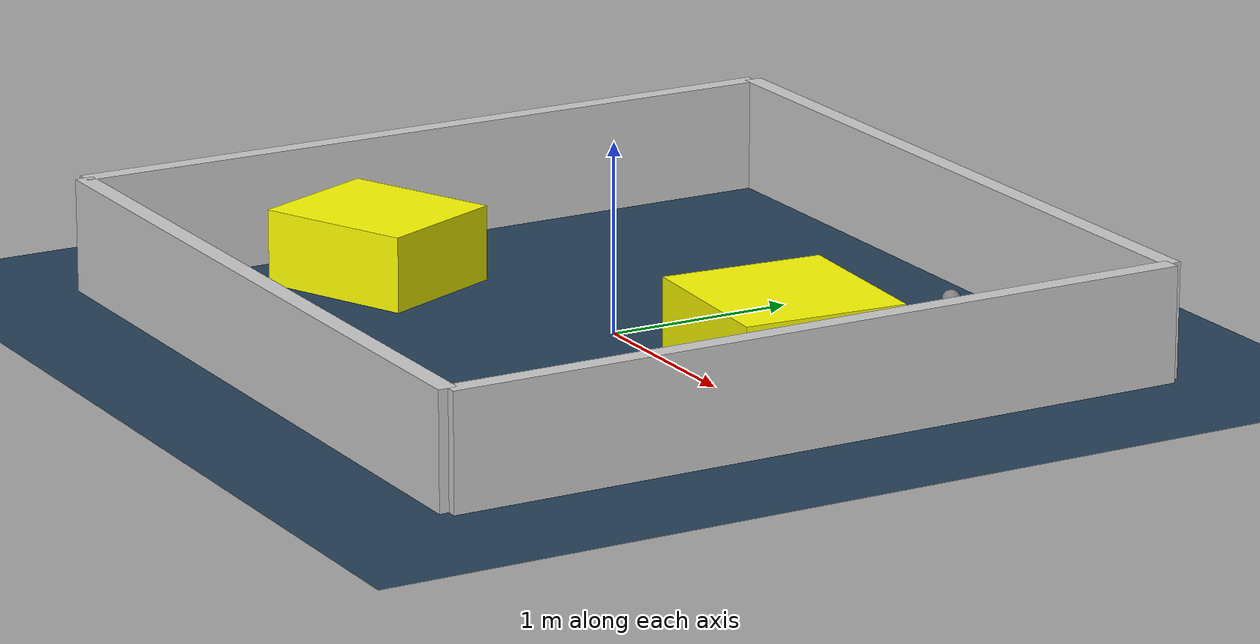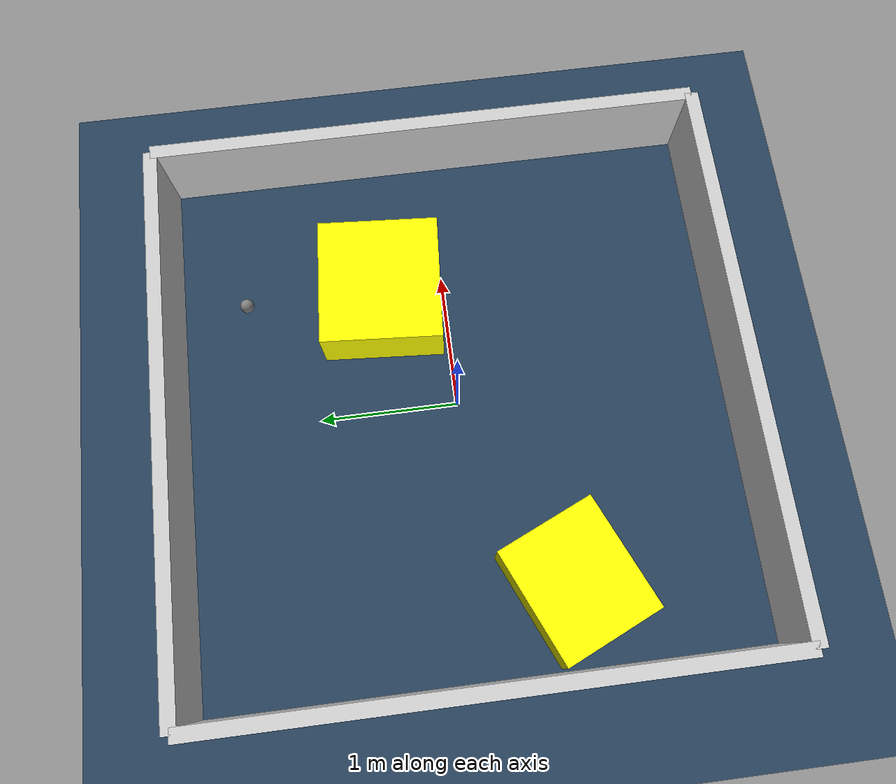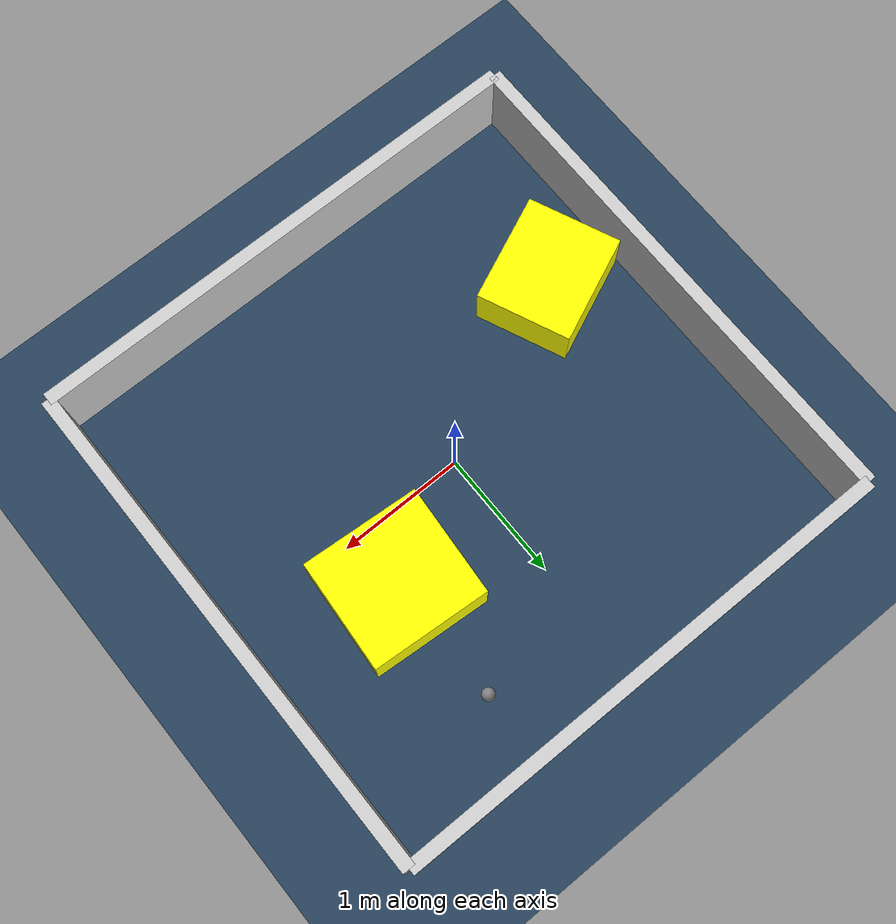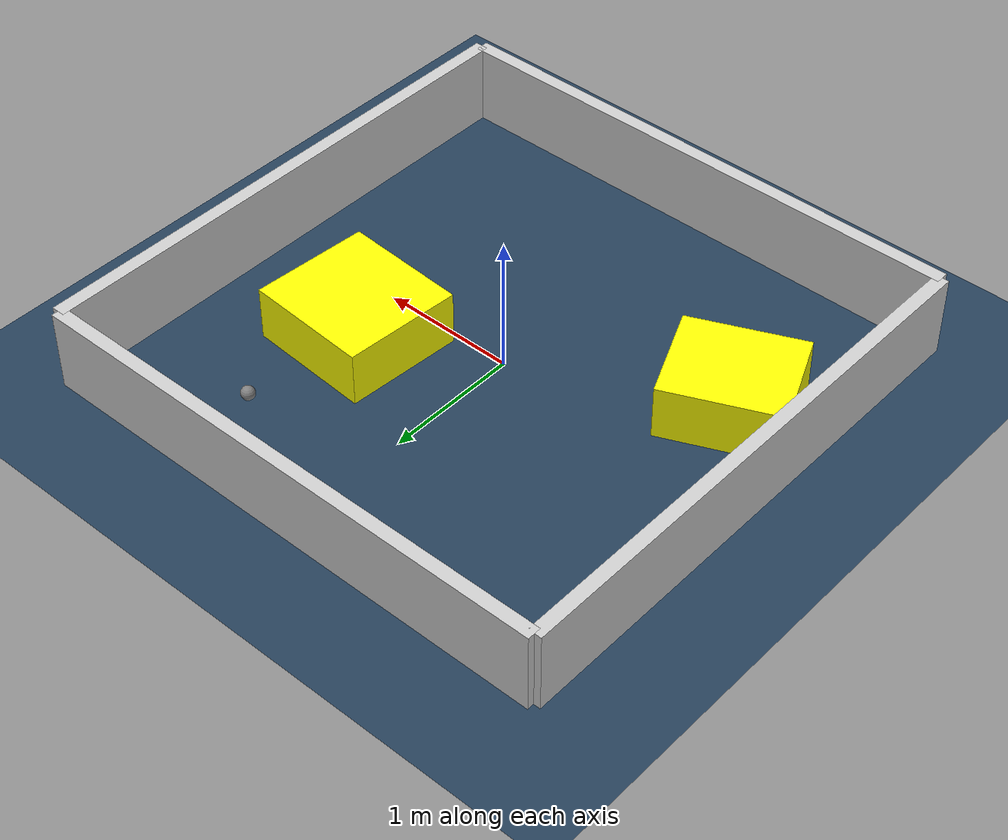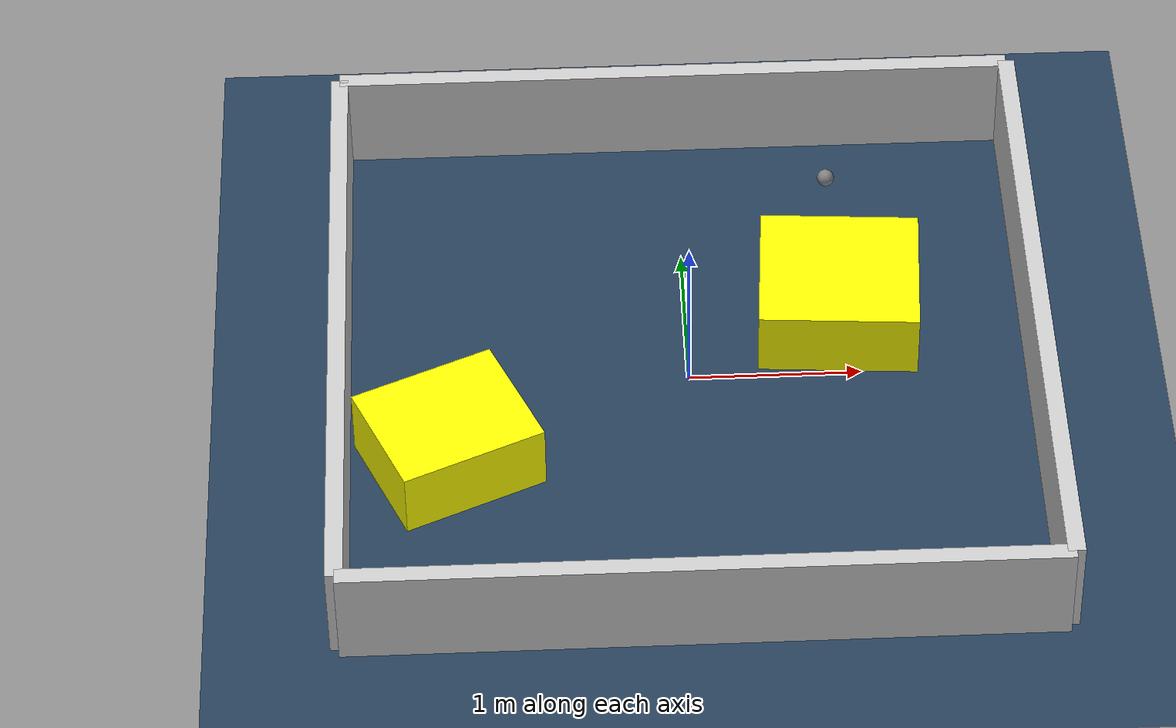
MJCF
<?xml version="1.0" ?>
<mujoco model="generated_environment">
  <option timestep="0.01" integrator="RK4" cone="elliptic"/>
  <default>
    <geom density="1"/>
  </default>
  <asset>
    <texture builtin="gradient" height="3072" rgb1="0.3 0.5 0.7" rgb2="0 0 0" type="skybox" width="512"/>
    <texture builtin="checker" height="300" mark="edge" markrgb="0.8 0.8 0.8" name="groundplane" rgb1="0.2 0.3 0.4" rgb2="0.1 0.2 0.3" type="2d" width="300"/>
    <material name="groundplane" reflectance="0.2" texrepeat="5 5" texture="groundplane" texuniform="true"/>
    <material name="robot" rgba="0.0 1.0 0.0 1"/>
  </asset>
  <worldbody>
    <light dir="0 0 -1" directional="true" pos="0 0 1.5"/>
    <geom condim="4" friction="1.0 0.005 0.001" material="groundplane" name="floor" size="0 0 0.05" type="plane"/>
    <body name="walls">
      <geom name="wall_1" condim="4" pos="-2.0 0.0 0.3" rgba="0.800000011920929 0.800000011920929 0.800000011920929 1.0" size="0.05 2.0 0.3" type="box"/>
      <geom name="wall_2" condim="4" pos="2.0 0.0 0.3" rgba="0.800000011920929 0.800000011920929 0.800000011920929 1.0" size="0.05 2.0 0.3" type="box"/>
      <geom name="wall_3" condim="4" pos="0.0 -2.0 0.3" rgba="0.800000011920929 0.800000011920929 0.800000011920929 1.0" size="2.0 0.05 0.3" type="box"/>
      <geom name="wall_4" condim="4" pos="0.0 2.0 0.3" rgba="0.800000011920929 0.800000011920929 0.800000011920929 1.0" size="2.0 0.05 0.3" type="box"/>
    </body>
    <body name="robot">
      <joint name="joint_x" type="slide" pos="0 0 0" axis="1 0 0"/>
      <joint name="joint_y" type="slide" pos="0 0 0" axis="0 1 0"/>
      <geom name="robot" type="sphere" pos="0.8848389743730154 1.4453896520740557 0.2" size="0.05" mass="5." friction="1.0 0.005 0.0001" condim="4"/>
      <site name="sensor_ball"/>
    </body>
    <body name="obstacle_1_movable">
      <geom name="obstacle_1_movable" condim="4" pos="-1.3843681556545748 -0.6255303477097536 0.2" euler="0 0 203.86622182930327" friction="1.0 0.005 0.001" rgba="1 1 0 1" size="0.42948023349028536 0.3682738380760868 0.2" type="box" mass="0.1"/>
      <joint type="free"/>
    </body>
    <body name="obstacle_2_movable">
      <geom name="obstacle_2_movable" condim="4" pos="0.8939911791718136 0.45407176524375625 0.2" euler="0 0 356.0017845723031" friction="1.0 0.005 0.001" rgba="1 1 0 1" size="0.46191816379087275 0.43782389741186367 0.2" type="box" mass="0.1"/>
      <joint type="free"/>
    </body>
  </worldbody>
  <actuator>
    <motor name="actuator_x" joint="joint_x" gear="1" ctrlrange="-1 1"/>
    <motor name="actuator_y" joint="joint_y" gear="1" ctrlrange="-1 1"/>
  </actuator>
</mujoco>
